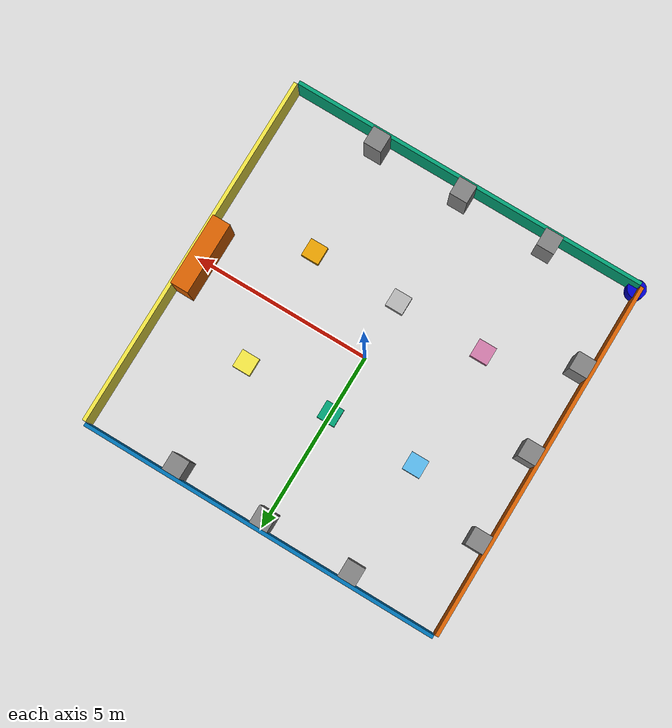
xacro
<?xml version="1.0" ?>

<robot xmlns:xacro="http://ros.org/wiki/xacro" name="shelf_mobile_1">

  <xacro:include filename="$(find panda_multiple_arms)/robot_description/xacro/walls_for_arms.xacro" />
  <xacro:include filename="$(find panda_multiple_arms)/robot_description/xacro/mobile_robot.xacro" />

  <xacro:walls_world_for_arms/>
  <xacro:mobile_robot name="mobile_1" dims="0.25" color="blue"/>
  <link name="mobile_1_temp"/>

  <xacro:mobile_robot name="mobile_2" dims="0.25" color="blue"/>
  <link name="mobile_2_temp"/>

  <xacro:mobile_robot name="mobile_3" dims="0.25" color="blue"/>
  <link name="mobile_3_temp"/>

  <xacro:mobile_robot name="mobile_4" dims="0.25" color="blue"/>
  <link name="mobile_4_temp"/>

  <xacro:mobile_robot name="mobile_5" dims="0.25" color="blue"/>
  <link name="mobile_5_temp"/>

  <xacro:mobile_robot name="mobile_6" dims="0.25" color="blue"/>
  <link name="mobile_6_temp"/>

  <xacro:mobile_robot name="mobile_7" dims="0.25" color="blue"/>
  <link name="mobile_7_temp"/>

  <xacro:mobile_robot name="mobile_8" dims="0.25" color="blue"/>
  <link name="mobile_8_temp"/>

  <xacro:mobile_robot name="mobile_9" dims="0.25" color="blue"/>
  <link name="mobile_9_temp"/>

  <!-- Mobile Robot 1 -->
  <joint name="mobile_1_1" type="prismatic">
      <parent link="world"/>
      <child link="mobile_1_temp"/>
      <limit effort="1000.0" lower="0" upper="10" velocity="1"/>
      <axis xyz="1 0 0"/>
      <origin rpy="0 0 0" xyz="0 0 0"/>
  </joint>

  <joint name="mobile_1_2" type="prismatic">
      <parent link="mobile_1_temp"/>
      <child link="mobile_1"/>
      <limit effort="1000.0" lower="0" upper="10" velocity="1"/>
      <axis xyz="0 1 0"/>
      <origin rpy="0 0 0" xyz="0 0 0"/>
  </joint>

  <!-- Mobile Robot 2 -->
  <joint name="mobile_2_1" type="prismatic">
      <parent link="world"/>
      <child link="mobile_2_temp"/>
      <limit effort="1000.0" lower="0" upper="10" velocity="1"/>
      <axis xyz="1 0 0"/>
      <origin rpy="0 0 0" xyz="0 0 0"/>
  </joint>

  <joint name="mobile_2_2" type="prismatic">
      <parent link="mobile_2_temp"/>
      <child link="mobile_2"/>
      <limit effort="1000.0" lower="0" upper="10" velocity="1"/>
      <axis xyz="0 1 0"/>
      <origin rpy="0 0 0" xyz="0 0 0"/>
  </joint>

  <!-- Mobile Robot 3 -->
  <joint name="mobile_3_1" type="prismatic">
      <parent link="world"/>
      <child link="mobile_3_temp"/>
      <limit effort="1000.0" lower="0" upper="10" velocity="1"/>
      <axis xyz="1 0 0"/>
      <origin rpy="0 0 0" xyz="0 0 0"/>
  </joint>

  <joint name="mobile_3_2" type="prismatic">
      <parent link="mobile_3_temp"/>
      <child link="mobile_3"/>
      <limit effort="1000.0" lower="0" upper="10" velocity="1"/>
      <axis xyz="0 1 0"/>
      <origin rpy="0 0 0" xyz="0 0 0"/>
  </joint>

  <!-- Mobile Robot 4 -->
  <joint name="mobile_4_1" type="prismatic">
      <parent link="world"/>
      <child link="mobile_4_temp"/>
      <limit effort="1000.0" lower="0" upper="10" velocity="1"/>
      <axis xyz="1 0 0"/>
      <origin rpy="0 0 0" xyz="0 0 0"/>
  </joint>

  <joint name="mobile_4_2" type="prismatic">
      <parent link="mobile_4_temp"/>
      <child link="mobile_4"/>
      <limit effort="1000.0" lower="0" upper="10" velocity="1"/>
      <axis xyz="0 1 0"/>
      <origin rpy="0 0 0" xyz="0 0 0"/>
  </joint>

  <!-- Mobile Robot 5 -->
  <joint name="mobile_5_1" type="prismatic">
      <parent link="world"/>
      <child link="mobile_5_temp"/>
      <limit effort="1000.0" lower="0" upper="10" velocity="1"/>
      <axis xyz="1 0 0"/>
      <origin rpy="0 0 0" xyz="0 0 0"/>
  </joint>

  <joint name="mobile_5_2" type="prismatic">
      <parent link="mobile_5_temp"/>
      <child link="mobile_5"/>
      <limit effort="1000.0" lower="0" upper="10" velocity="1"/>
      <axis xyz="0 1 0"/>
      <origin rpy="0 0 0" xyz="0 0 0"/>
  </joint>

    <!-- Mobile Robot 6 -->
  <joint name="mobile_6_1" type="prismatic">
      <parent link="world"/>
      <child link="mobile_6_temp"/>
      <limit effort="1000.0" lower="0" upper="10" velocity="1"/>
      <axis xyz="1 0 0"/>
      <origin rpy="0 0 0" xyz="0 0 0"/>
  </joint>

  <joint name="mobile_6_2" type="prismatic">
      <parent link="mobile_6_temp"/>
      <child link="mobile_6"/>
      <limit effort="1000.0" lower="0" upper="10" velocity="1"/>
      <axis xyz="0 1 0"/>
      <origin rpy="0 0 0" xyz="0 0 0"/>
  </joint>

    <!-- Mobile Robot 7 -->
  <joint name="mobile_7_1" type="prismatic">
      <parent link="world"/>
      <child link="mobile_7_temp"/>
      <limit effort="1000.0" lower="0" upper="10" velocity="1"/>
      <axis xyz="1 0 0"/>
      <origin rpy="0 0 0" xyz="0 0 0"/>
  </joint>

  <joint name="mobile_7_2" type="prismatic">
      <parent link="mobile_7_temp"/>
      <child link="mobile_7"/>
      <limit effort="1000.0" lower="0" upper="10" velocity="1"/>
      <axis xyz="0 1 0"/>
      <origin rpy="0 0 0" xyz="0 0 0"/>
  </joint>

    <!-- Mobile Robot 8 -->
  <joint name="mobile_8_1" type="prismatic">
      <parent link="world"/>
      <child link="mobile_8_temp"/>
      <limit effort="1000.0" lower="0" upper="10" velocity="1"/>
      <axis xyz="1 0 0"/>
      <origin rpy="0 0 0" xyz="0 0 0"/>
  </joint>

  <joint name="mobile_8_2" type="prismatic">
      <parent link="mobile_8_temp"/>
      <child link="mobile_8"/>
      <limit effort="1000.0" lower="0" upper="10" velocity="1"/>
      <axis xyz="0 1 0"/>
      <origin rpy="0 0 0" xyz="0 0 0"/>
  </joint>

    <!-- Mobile Robot 9 -->
  <joint name="mobile_9_1" type="prismatic">
      <parent link="world"/>
      <child link="mobile_9_temp"/>
      <limit effort="1000.0" lower="0" upper="10" velocity="1"/>
      <axis xyz="1 0 0"/>
      <origin rpy="0 0 0" xyz="0 0 0"/>
  </joint>

  <joint name="mobile_9_2" type="prismatic">
      <parent link="mobile_9_temp"/>
      <child link="mobile_9"/>
      <limit effort="1000.0" lower="0" upper="10" velocity="1"/>
      <axis xyz="0 1 0"/>
      <origin rpy="0 0 0" xyz="0 0 0"/>
  </joint>

</robot>

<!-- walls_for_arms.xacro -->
<!-- rosrun xacro xacro panda_multiple_arms.xacro -o panda_multiple_arms.urdf -->
<robot xmlns:xacro="http://ros.org/wiki/xacro" name="walls_for_arms">
  <xacro:macro name="walls_world_for_arms">
    <xacro:property name="length" value="10.0" />
    <xacro:property name="width" value="0.1" />
    <xacro:property name="height" value="1" />
    <xacro:property name="margin" value="0.01" />

    <link name="world_center"/>

    <link name="world"/>

    <joint name="world_center_to_world" type="fixed">
      <parent link="world_center"/>
      <child link="world"/>
      <origin rpy="0 0 0" xyz="${-length/2} ${-length/2} 0"/>
    </joint>

    <!-- Setup the first wall -->
    <link name="wall_right" type="fixed">
      <visual>
        <geometry>
          <box size="${length} ${width} ${height}"/>
        </geometry>
        <origin rpy="0 0 0" xyz="${length/2} ${-width/2 - margin} 0"/>
      </visual>

      <collision>
        <geometry>
          <box size="${length} ${width} ${height}"/>
        </geometry>
        <origin rpy="0 0 0" xyz="${length/2} ${-width/2 - margin} 0"/>
      </collision>
    </link>

    <joint name="world_to_right" type="fixed">
      <parent link="world"/>
      <child link="wall_right"/>
      <origin rpy="0 0 0" xyz="0 0 ${height/2}"/>
    </joint>

    <!-- Setup the second wall -->
    <link name="wall_front">
      <visual>
        <geometry>
          <box size="${length} ${width} ${height}"/>
        </geometry>
        <origin rpy="0 0 0" xyz="${length/2} ${-width/2 - margin} 0"/>
      </visual>

      <collision>
        <geometry>
          <box size="${length} ${width} ${height}"/>
        </geometry>
        <origin rpy="0 0 0" xyz="${length/2} ${-width/2 - margin} 0"/>
      </collision>
    </link>

    <joint name="right_to_front" type="fixed">
      <parent link="wall_right"/>
      <child link="wall_front"/>
      <origin rpy="0 0 1.5708" xyz="${length} 0 0"/>
    </joint>

    <!-- Setup the third wall -->
    <link name="wall_left">
      <visual>
        <geometry>
          <box size="${length} ${width} ${height}"/>
        </geometry>
        <origin rpy = "0 0 0" xyz="${length/2} ${-width/2 - margin} 0"/>
      </visual>

      <collision>
        <geometry>
          <box size="${length} ${width} ${height}"/>
        </geometry>
        <origin rpy = "0 0 0" xyz="${length/2} ${-width/2 - margin} 0"/>
      </collision>
    </link>

    <joint name="front_to_left" type="fixed">
      <parent link="wall_front"/>
      <child link="wall_left"/>
      <origin rpy="0 0 1.5708" xyz="${length} 0 0"/>
    </joint>

    <!-- Setup the fourth wall -->
    <link name="wall_back">
      <visual>
        <geometry>
          <box size="${length} ${width} ${height}"/>
        </geometry>
        <origin rpy = "0 0 0" xyz="${length/2} ${-width/2 - margin} 0"/>
      </visual>

      <collision>
        <geometry>
          <box size="${length} ${width} ${height}"/>
        </geometry>
        <origin rpy = "0 0 0" xyz="${length/2} ${-width/2 - margin} 0"/>
      </collision>
    </link>

    <joint name="left_to_back" type="fixed">
      <parent link="wall_left"/>
      <child link="wall_back"/>
      <origin rpy="0 0 1.5708" xyz="${length} 0 0"/>
    </joint>

    <!-- Shelf properties -->
    <xacro:property name="shelf_length" value="0.5" />
    <xacro:property name="shelf_width" value="0.5" />
    <xacro:property name="shelf_height" value="0.2" />

    <!-- Setup the first shelf -->
    <link name="shelf_1">
      <visual>
        <geometry>
          <box size="${shelf_length} ${shelf_width} ${shelf_height}"/>
        </geometry>
        <origin rpy = "0 0 0" xyz="0 0 ${shelf_height/2}"/>
      </visual>

      <collision>
        <geometry>
          <box size="${shelf_length} ${shelf_width} ${shelf_height}"/>
        </geometry>
        <origin rpy = "0 0 0" xyz="0 0 ${shelf_height/2}"/>
      </collision>
    </link>

    <joint name="world_to_shelf_1" type="fixed">
      <parent link="world"/>
      <child link="shelf_1"/>
      <origin rpy="0 0 0" xyz="${1*length/4} ${length/3} 0"/>
    </joint>

    <!-- Setup the second shelf -->
    <link name="shelf_2">
      <visual>
        <geometry>
          <box size="${shelf_length} ${shelf_width} ${shelf_height}"/>
        </geometry>
        <origin rpy = "0 0 0" xyz="0 0 ${shelf_height/2}"/>0*radius}
      </visual>

      <collision>
        <geometry>
          <box size="${shelf_length} ${shelf_width} ${shelf_height}"/>
        </geometry>
        <origin rpy = "0 0 0" xyz="0 0 ${shelf_height/2}"/>
      </collision>
    </link>

    <joint name="world_to_shelf_2" type="fixed">
      <parent link="world"/>
      <child link="shelf_2"/>
      <origin rpy="0 0 0" xyz="${2*length/4} ${length/3} 0"/>
    </joint>

    <!-- Setup the third shelf -->
    <link name="shelf_3">
      <visual>
        <geometry>
          <box size="${shelf_length} ${shelf_width} ${shelf_height}"/>
        </geometry>
        <origin rpy = "0 0 0" xyz="0 0 ${shelf_height/2}"/>
      </visual>

      <collision>
        <geometry>
          <box size="${shelf_length} ${shelf_width} ${shelf_height}"/>
        </geometry>
        <origin rpy = "0 0 0" xyz="0 0 ${shelf_height/2}"/>
      </collision>
    </link>

    <joint name="world_to_shelf_3" type="fixed">
      <parent link="world"/>
      <child link="shelf_3"/>
      <origin rpy="0 0 0" xyz="${3*length/4} ${length/3} 0"/>
    </joint>

    <!-- Setup the fourth shelf -->
    <link name="shelf_4">
      <visual>
        <geometry>
          <box size="${shelf_length} ${shelf_width} ${shelf_height}"/>
        </geometry>
        <origin rpy = "0 0 0" xyz="0 0 ${shelf_height/2}"/>
      </visual>

      <collision>
        <geometry>
          <box size="${shelf_length} ${shelf_width} ${shelf_height}"/>
        </geometry>
        <origin rpy = "0 0 0" xyz="0 0 ${shelf_height/2}"/>
      </collision>
    </link>

    <joint name="world_to_shelf_4" type="fixed">
      <parent link="world"/>
      <child link="shelf_4"/>
      <origin rpy="0 0 0" xyz="${1*length/4} ${2*length/3} 0"/>
    </joint>

    <!-- Setup the fifth shelf -->
    <link name="shelf_5">
      <visual>
        <geometry>
          <box size="${shelf_length} ${shelf_width} ${shelf_height}"/>
        </geometry>
        <origin rpy = "0 0 0" xyz="0 0 ${shelf_height/2}"/>
      </visual>

      <collision>
        <geometry>
          <box size="${shelf_length} ${shelf_width} ${shelf_height}"/>
        </geometry>
        <origin rpy = "0 0 0" xyz="0 0 ${shelf_height/2}"/>
      </collision>
    </link>

    <joint name="world_to_shelf_5" type="fixed">
      <parent link="world"/>
      <child link="shelf_5"/>
      <origin rpy="0 0 0" xyz="${2*length/4} ${2*length/3} 0"/>
    </joint>

    <!-- Setup the sixth shelf -->
    <link name="shelf_6">
      <visual>
        <geometry>
          <box size="${shelf_length} ${shelf_width} ${shelf_height}"/>
        </geometry>
        <origin rpy = "0 0 0" xyz="0 0 ${shelf_height/2}"/>
      </visual>

      <collision>
        <geometry>
          <box size="${shelf_length} ${shelf_width} ${shelf_height}"/>
        </geometry>
        <origin rpy = "0 0 0" xyz="0 0 ${shelf_height/2}"/>
      </collision>
    </link>

    <joint name="world_to_shelf_6" type="fixed">
      <parent link="world"/>
      <child link="shelf_6"/>
      <origin rpy="0 0 0" xyz="${3*length/4} ${2*length/3} 0"/>
    </joint>

    <!-- Pickup points -->
    <xacro:property name="pp_length" value="0.5" />
    <xacro:property name="pp_width" value="0.5" />
    <xacro:property name="pp_height" value="${height*1.3}" />

    <material name="pickup_shelf_color">
      <color rgba="0.5 0.5 0.5 0.99"/>
    </material>

    <xacro:macro name="pickup_point" params="number loc_x loc_y">
      <link name="pickup_point_${number}">
        <visual>
          <geometry>
            <box size="${pp_length} ${pp_width} ${pp_height}"/>
          </geometry>
          <material name="pickup_shelf_color"/>
          <origin rpy = "0 0 0" xyz="0 0 ${pp_height/2}"/>
        </visual>
        <collision>
          <geometry>
            <box size="${pp_length} ${pp_width} ${pp_height}"/>
          </geometry>
          <origin rpy = "0 0 0" xyz="0 0 ${pp_height/2}"/>
        </collision>
      </link>

      <joint name="world_to_pickup_point_${number}" type="fixed">
        <parent link="world"/>
        <child link="pickup_point_${number}"/>
        <origin rpy="0 0 0" xyz="${loc_x} ${loc_y} 0"/>
      </joint>
    </xacro:macro>

    <xacro:pickup_point number="1" loc_x="${length/4}" loc_y="${pp_width/2}"/>
    <xacro:pickup_point number="2" loc_x="${2*length/4}" loc_y="${pp_width/2}"/>
    <xacro:pickup_point number="3" loc_x="${3*length/4}" loc_y="${pp_width/2}"/>

    <xacro:pickup_point number="4" loc_x="${pp_length/2}" loc_y="${length/4}"/>
    <xacro:pickup_point number="5" loc_x="${pp_length/2}" loc_y="${2*length/4}"/>
    <xacro:pickup_point number="6" loc_x="${pp_length/2}" loc_y="${3*length/4}"/>

    <xacro:pickup_point number="7" loc_x="${length/4}" loc_y="${length-pp_width/2}"/>
    <xacro:pickup_point number="8" loc_x="${2*length/4}" loc_y="${length-pp_width/2}"/>
    <xacro:pickup_point number="9" loc_x="${3*length/4}" loc_y="${length-pp_width/2}"/>

    <!-- Dropoff point -->

    <xacro:property name="dp_length" value = "${pp_length}"/>
    <xacro:property name="dp_width" value = "2"/>
    <xacro:property name="dp_height" value = "${pp_height}"/>

    <link name="dropoff_point">
      <visual>
        <geometry>
          <box size="${dp_length} ${dp_width} ${dp_height}"/>
        </geometry>
        <origin rpy = "0 0 0" xyz="0 0 ${dp_height/2}"/>
      </visual>
      <collision>
        <geometry>
          <box size="${dp_length} ${dp_width} ${dp_height}"/>
        </geometry>
        <origin rpy = "0 0 0" xyz="0 0 ${dp_height/2}"/>
      </collision>
    </link>

    <joint name="world_to_dropoff_point" type="fixed">
      <parent link="world"/>
      <child link="dropoff_point"/>
      <origin rpy="0 0 0" xyz="${length - dp_length/2} ${length/2} 0"/>
    </joint>

  </xacro:macro>
</robot>

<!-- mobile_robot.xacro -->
<!-- rosrun xacro xacro panda_multiple_arms.xacro -o panda_multiple_arms.urdf -->
<robot xmlns:xacro="http://ros.org/wiki/xacro" name="mobile_robot">

  <xacro:property name="height" value="0.5" />

  <material name="blue">
    <color rgba="0 0 0.8 1"/>
  </material>

  <material name="white">
    <color rgba="1 1 1 1"/>
  </material>

  <material name="green">
    <color rgba="0 0.8 0 1"/>
  </material>

  <material name="black">
    <color rgba="0 0 0 1"/>
  </material>

  <!-- Did not set a default for the name of the robot to require a name -->
  <!-- Follow the convention "mobile_1" -->
  <!-- Expected dims 0.25 unless the map changes -->

  <xacro:macro name="mobile_robot" params="name dims color">
    <link name="${name}" default = "mobile_bot_unnamed">
      <visual>
        <geometry>
          <cylinder length="${height}" radius="${dims}"/>
        </geometry>
        <material name="${color}"/>
        <origin rpy = "0 0 0" xyz="0 0 ${height/2}"/>
      </visual>

      <collision>
        <geometry>
          <cylinder length="${height}" radius="${dims}"/>
        </geometry>
        <origin rpy = "0 0 0" xyz="0 0 ${height/2}"/>
      </collision>
    </link>
  </xacro:macro>

</robot>
